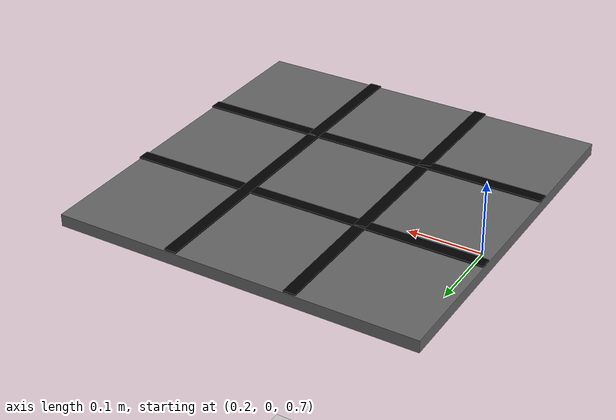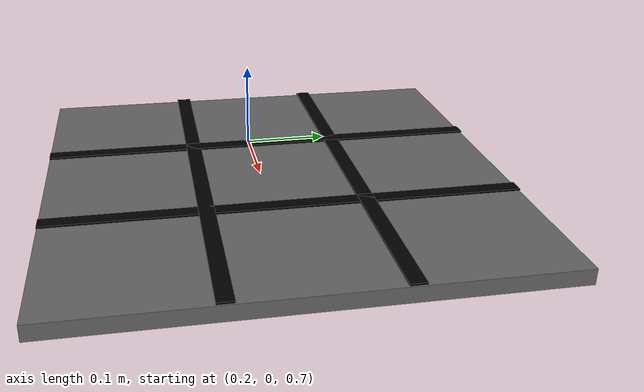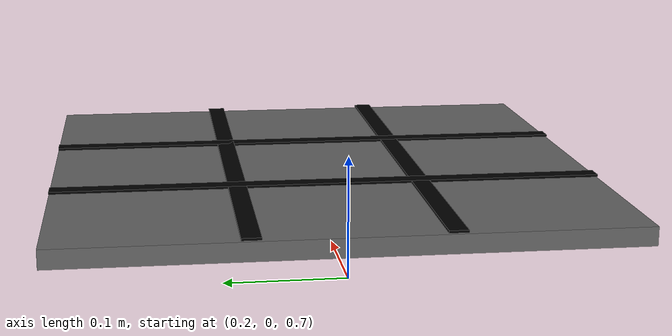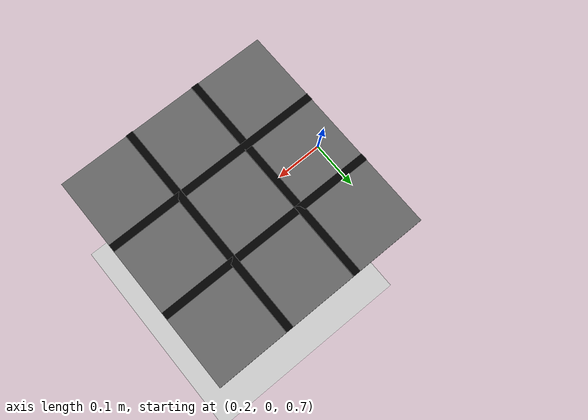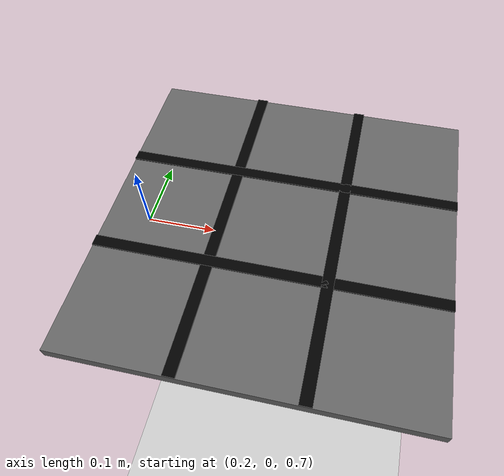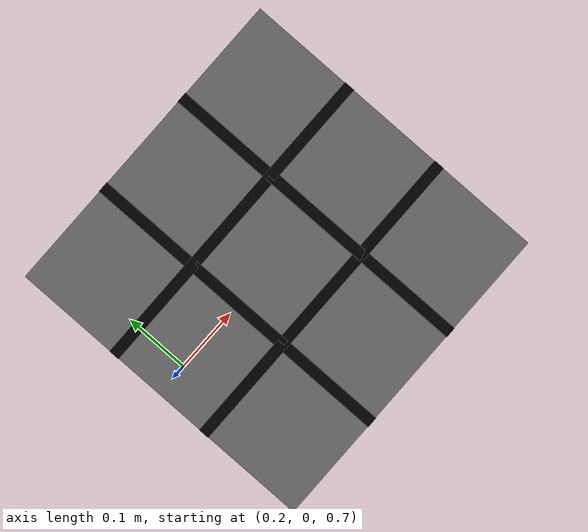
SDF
<?xml version="1.0" ?>
<sdf version="1.6">
  <world name="default">

    <!-- 🌞 Add Sunlight -->
    <include>
      <uri>model://sun</uri>
    </include>

    <!-- 🌍 Add Ground Plane -->
    <include>
      <uri>model://ground_plane</uri>
    </include>

    <!-- 🎮 Tic Tac Toe Board (positioned close to robot) -->
    <include>
      <uri>model://tictactoe_board</uri>
      <!-- pose format: x y z roll pitch yaw -->
      <!-- Adjusted so the board is closer and slightly raised -->
      <pose>0.40 0.00 0.73 0 0 0</pose>
    </include>

    <!-- ROS Factory Plugin -->
    <plugin name="gazebo_ros_factory" filename="libgazebo_ros_factory.so"/>

  </world>
</sdf>

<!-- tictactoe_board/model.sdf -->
<sdf version="1.6">
  <model name="tictactoe_board">
    <!-- Keep same position, just smaller board -->
    <pose>0.45 0.0 0.75 0 0 0</pose>
    <static>true</static>

    <!-- Board base -->
    <link name="board_base">
      <pose>0 0 0 0 0 0</pose>

      <collision name="collision">
        <geometry>
          <box>
            <size>0.48 0.48 0.016</size> <!-- Reduced from 0.6 to 0.48 -->
          </box>
        </geometry>
      </collision>

      <visual name="board_visual">
        <geometry>
          <box>
            <size>0.48 0.48 0.016</size> <!-- Reduced -->
          </box>
        </geometry>
        <material>
          <ambient>0.3 0.3 0.3 1</ambient>
          <diffuse>0.4 0.4 0.4 1</diffuse>
          <specular>0.1 0.1 0.1 1</specular>
        </material>
        <pose>0 0 0.008 0 0 0</pose>
      </visual>
    </link>

    <!-- Grid lines - adjusted for smaller board -->
    <!-- Vertical lines -->
    <link name="vline1">
      <pose>-0.08 0 0.018 0 0 0</pose>
      <visual name="visual_v1">
        <geometry>
          <box>
            <size>0.016 0.48 0.002</size>
          </box>
        </geometry>
        <material>
          <ambient>0 0 0 1</ambient>
          <diffuse>0 0 0 1</diffuse>
        </material>
      </visual>
    </link>

    <link name="vline2">
      <pose>0.08 0 0.018 0 0 0</pose>
      <visual name="visual_v2">
        <geometry>
          <box>
            <size>0.016 0.48 0.002</size>
          </box>
        </geometry>
        <material>
          <ambient>0 0 0 1</ambient>
          <diffuse>0 0 0 1</diffuse>
        </material>
      </visual>
    </link>

    <!-- Horizontal lines -->
    <link name="hline1">
      <pose>0 -0.08 0.018 0 0 0</pose>
      <visual name="visual_h1">
        <geometry>
          <box>
            <size>0.48 0.016 0.002</size>
          </box>
        </geometry>
        <material>
          <ambient>0 0 0 1</ambient>
          <diffuse>0 0 0 1</diffuse>
        </material>
      </visual>
    </link>

    <link name="hline2">
      <pose>0 0.08 0.018 0 0 0</pose>
      <visual name="visual_h2">
        <geometry>
          <box>
            <size>0.48 0.016 0.002</size>
          </box>
        </geometry>
        <material>
          <ambient>0 0 0 1</ambient>
          <diffuse>0 0 0 1</diffuse>
        </material>
      </visual>
    </link>

  </model>
</sdf>
